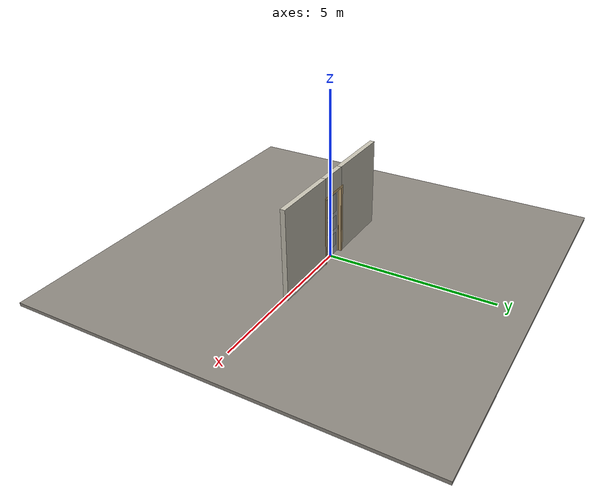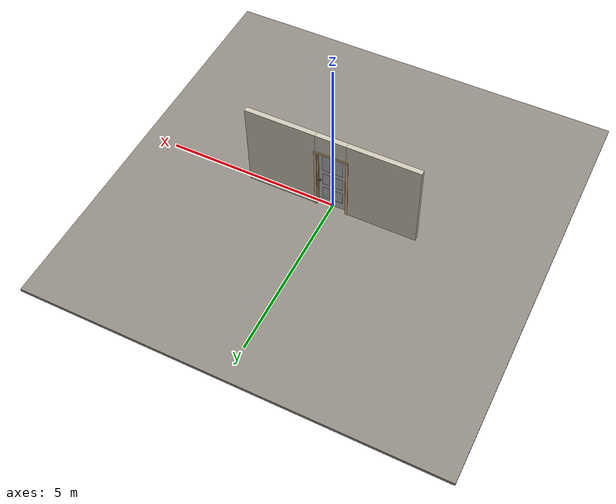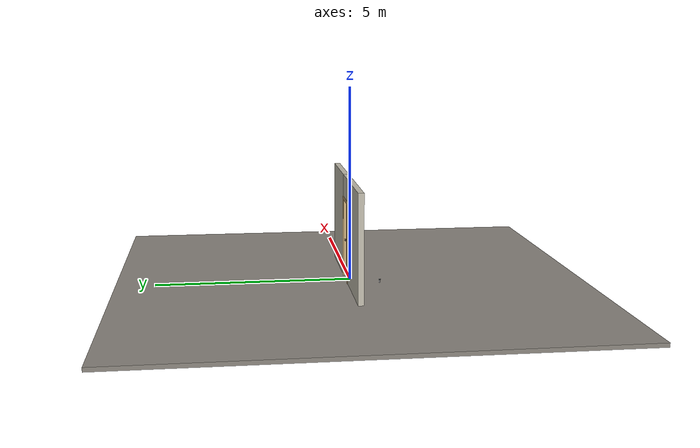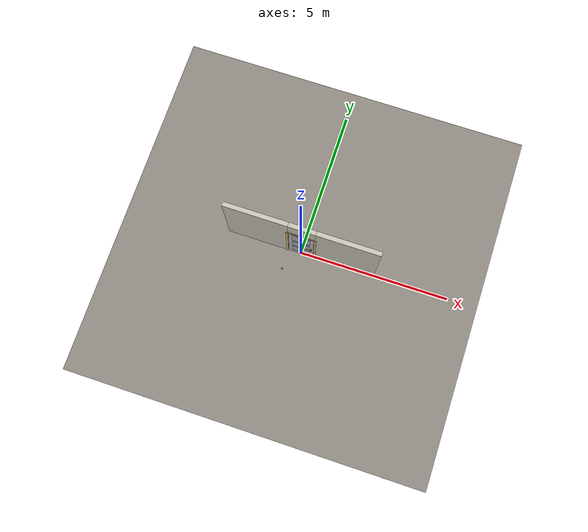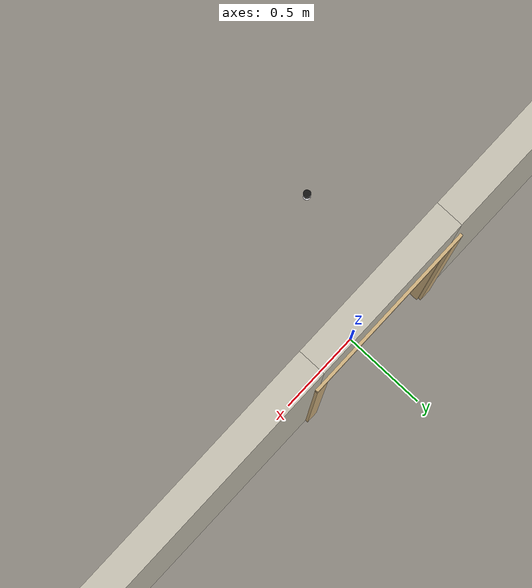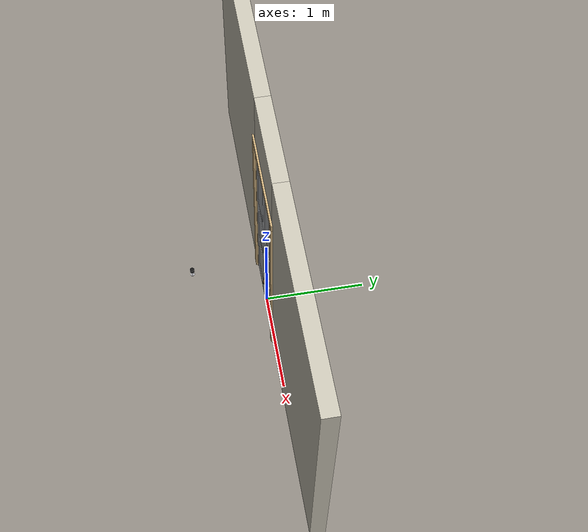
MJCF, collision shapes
<?xml version="1.0" ?>
<mujoco model="db0740_swing_single_full">
  <compiler angle="radian" meshdir="../../hardware" texturedir="../../textures" autolimits="true" inertiafromgeom="false"/>
  <option timestep="0.002" integrator="implicitfast" cone="elliptic" impratio="10" noslip_iterations="3">
    <flag multiccd="enable"/>
  </option>
  <size memory="16M"/>
  <default>
    <geom condim="4" solref="0.005 1" solimp="0.95 0.99 0.001"/>
    <joint solreflimit="0.005 1" solimplimit="0.95 0.99 0.001"/>
    <tendon solreflimit="0.005 1"/>
    <equality solref="0.002 1"/>
  </default>
  <visual>
    <headlight ambient="0.4 0.4 0.4" diffuse="0.7 0.7 0.7" specular="0.2 0.2 0.2"/>
    <quality shadowsize="4096"/>
    <map znear="0.01" zfar="60"/>
  </visual>
  <asset>
    <mesh name="hinge_96510cf394" file="hinge_96510cf394.obj"/>
    <mesh name="hinge_jamb_7fd4ca52b2" file="hinge_jamb_7fd4ca52b2.obj"/>
    <mesh name="knob_0ebdbe0e4b" file="knob_0ebdbe0e4b.obj"/>
    <material name="mat_floor" rgba="0.55 0.53 0.5 1" specular="0.2" shininess="0.15" reflectance="0"/>
    <material name="mat_wall" rgba="0.78 0.76 0.7 1" specular="0.2" shininess="0.1" reflectance="0"/>
    <material name="mat_leaf" rgba="0.72 0.73 0.74 1" specular="0.2" shininess="0.5" reflectance="0"/>
    <material name="mat_leaf_panel" rgba="0.662 0.672 0.681 1" specular="0.2" shininess="0.5" reflectance="0"/>
    <material name="mat_hinge" rgba="0.65 0.66 0.68 1" specular="0.74" shininess="0.5" reflectance="0.36"/>
    <material name="mat_op_bronze" rgba="0.3 0.22 0.15 1" specular="0.74" shininess="0.5" reflectance="0.36"/>
    <material name="mat_trim" rgba="0.85 0.66 0.3 1" specular="0.8" shininess="0.75" reflectance="0.4"/>
    <material name="mat_bolt" rgba="0.85 0.66 0.3 1" specular="0.8" shininess="0.75" reflectance="0.4"/>
    <material name="mat_frame" rgba="0.82 0.7 0.5 1" specular="0.2" shininess="0.45" reflectance="0"/>
    <material name="mat_bumper_stop" rgba="0.08 0.08 0.08 1" specular="0.2" shininess="0.1" reflectance="0"/>
    <material name="mat_stop_base" rgba="0.9 0.9 0.92 1" specular="0.8" shininess="0.9" reflectance="0.4"/>
    <texture name="skybox" type="skybox" builtin="gradient" rgb1="0.6 0.7 0.85" rgb2="0.9 0.92 0.95" width="256" height="256"/>
  </asset>
  <worldbody>
    <light name="sun" pos="1.5 -2.5 4" dir="-0.3 0.5 -0.8" directional="true" diffuse="0.8 0.8 0.8" specular="0.3 0.3 0.3" castshadow="true"/>
    <light name="fill" pos="-1.5 2.5 3" dir="0.3 -0.5 -0.7" directional="true" diffuse="0.35 0.35 0.4" castshadow="false"/>
    <camera name="robot_view" pos="0 -2.494187 1.734312" xyaxes="1 0 0 0 0.26963 0.962964" fovy="52"/>
    <camera name="far_view" pos="0 2.590187 1.734312" xyaxes="-1 0 0 0 -0.26963 0.962964" fovy="52"/>
    <camera name="iso" pos="1.932062 -2.087438 2.141063" xyaxes="0.741536 0.670913 0 -0.242917 0.268487 0.932151" fovy="46"/>
    <camera name="detail_handle" pos="0.526 -0.8695 1.245" xyaxes="0.97561 0.219512 0 -0.070934 0.315262 0.94635" fovy="38"/>
    <geom name="floor" type="box" size="6 6 0.05" pos="0 0 -0.05" material="mat_floor" group="0" contype="1" conaffinity="1" friction="0.8 0.005 0.0001" density="2400"/>
    <geom name="wall_left" type="box" size="1.0355 0.0725 1.35" pos="-1.4645 0.048 1.35" material="mat_wall" group="0" contype="1" conaffinity="1" friction="0.6 0.005 0.0001" density="800"/>
    <geom name="wall_right" type="box" size="1.0205 0.0725 1.35" pos="1.4795 0.048 1.35" material="mat_wall" group="0" contype="1" conaffinity="1" friction="0.6 0.005 0.0001" density="800"/>
    <geom name="wall_header" type="box" size="0.444 0.0725 0.303" pos="0.015 0.048 2.397" material="mat_wall" group="0" contype="1" conaffinity="1" friction="0.6 0.005 0.0001" density="800"/>
    <geom name="hinge_0_jamb" type="mesh" mesh="hinge_jamb_7fd4ca52b2" pos="-0.407 -0.0245 0.259" material="mat_hinge" group="1" contype="0" conaffinity="0" density="7850"/>
    <geom name="hinge_1_jamb" type="mesh" mesh="hinge_jamb_7fd4ca52b2" pos="-0.407 -0.0245 1.861" material="mat_hinge" group="1" contype="0" conaffinity="0" density="7850"/>
    <geom name="jamb_hinge" type="box" size="0.0095 0.0725 1.0225" pos="-0.4195 0.048 1.0225" material="mat_frame" group="0" contype="1" conaffinity="1" friction="0.6 0.005 0.0001" density="400"/>
    <geom name="strike_965_wall_n" type="box" size="0.0245 0.056325 0.0167" pos="0.4345 0.064175 0.965" material="mat_frame" group="0" contype="1" conaffinity="1" friction="0.6 0.005 0.0001" density="400"/>
    <geom name="strike_965_wall_p" type="box" size="0.0245 0.008 0.0167" pos="0.4345 -0.01585 0.965" material="mat_frame" group="0" contype="1" conaffinity="1" friction="0.6 0.005 0.0001" density="400"/>
    <geom name="strike_965_ramp" type="box" size="0.0245 0.01649 0.0167" pos="0.439136 -0.028673 0.965" quat="0.977148 0 0 0.212558" material="mat_frame" group="0" contype="1" conaffinity="1" friction="0.12 0.005 0.0001" density="400"/>
    <geom name="strike_965_back" type="box" size="0.01615 0.00785 0.0167" pos="0.44285 0 0.965" material="mat_frame" group="0" contype="1" conaffinity="1" friction="0.6 0.005 0.0001" density="400"/>
    <geom name="jamb_strike_0" type="box" size="0.0245 0.0725 0.47415" pos="0.4345 0.048 0.47415" material="mat_frame" group="0" contype="1" conaffinity="1" friction="0.6 0.005 0.0001" density="400"/>
    <geom name="jamb_strike_1" type="box" size="0.0245 0.0725 0.53165" pos="0.4345 0.048 1.51335" material="mat_frame" group="0" contype="1" conaffinity="1" friction="0.6 0.005 0.0001" density="400"/>
    <geom name="jamb_head" type="box" size="0.444 0.0725 0.0095" pos="0.015 0.048 2.0545" material="mat_frame" group="0" contype="1" conaffinity="1" friction="0.6 0.005 0.0001" density="400"/>
    <geom name="head_stud" type="box" size="0.444 0.0725 0.015" pos="0.015 0.048 2.079" material="mat_wall" group="0" contype="1" conaffinity="1" friction="0.6 0.005 0.0001" density="500"/>
    <geom name="stop_hinge" type="box" size="0.0055 0.016 1.0225" pos="-0.4045 0.034 1.0225" material="mat_frame" group="0" contype="1" conaffinity="1" friction="0.6 0.005 0.0001" density="400"/>
    <geom name="stop_strike" type="box" size="0.0055 0.016 1.0225" pos="0.4045 0.034 1.0225" material="mat_frame" group="0" contype="1" conaffinity="1" friction="0.6 0.005 0.0001" density="400"/>
    <geom name="stop_head" type="box" size="0.41 0.016 0.0055" pos="0 0.034 2.0395" material="mat_frame" group="0" contype="1" conaffinity="1" friction="0.6 0.005 0.0001" density="400"/>
    <geom name="casing_l_n" type="box" size="0.035 0.008 1.032" pos="-0.459 -0.0325 1.0225" material="mat_frame" group="2" contype="0" conaffinity="0" density="400"/>
    <geom name="casing_r_n" type="box" size="0.035 0.008 1.032" pos="0.459 -0.0325 1.0225" material="mat_frame" group="2" contype="0" conaffinity="0" density="400"/>
    <geom name="casing_h_n" type="box" size="0.494 0.008 0.035" pos="0 -0.0325 2.094" material="mat_frame" group="2" contype="0" conaffinity="0" density="400"/>
    <geom name="casing_l_p" type="box" size="0.035 0.008 1.032" pos="-0.459 0.1285 1.0225" material="mat_frame" group="2" contype="0" conaffinity="0" density="400"/>
    <geom name="casing_r_p" type="box" size="0.035 0.008 1.032" pos="0.459 0.1285 1.0225" material="mat_frame" group="2" contype="0" conaffinity="0" density="400"/>
    <geom name="casing_h_p" type="box" size="0.494 0.008 0.035" pos="0 0.1285 2.094" material="mat_frame" group="2" contype="0" conaffinity="0" density="400"/>
    <geom name="door_stop_base" type="cylinder" size="0.022 0.003" pos="-0.423 -0.71555 0.003" material="mat_stop_base" group="0" contype="1" conaffinity="1" friction="0.6 0.005 0.0001" density="7850"/>
    <geom name="door_stop_post" type="cylinder" size="0.012 0.0245" pos="-0.423 -0.71555 0.0305" material="mat_stop_base" group="0" contype="1" conaffinity="1" friction="0.6 0.005 0.0001" density="7850"/>
    <geom name="door_stop_bumper" type="cylinder" size="0.022 0.02" pos="-0.423 -0.71555 0.075" material="mat_bumper_stop" group="0" contype="1" conaffinity="1" friction="0.6 0.005 0.0001" density="1100"/>
    <site name="approach_point" pos="0 -1.5 0" quat="1 0 0 0" size="0.05" rgba="0.2 0.9 0.2 0.5" group="4"/>
    <site name="goal_point" pos="0 1.5 0" quat="1 0 0 0" size="0.05" rgba="0.2 0.9 0.2 0.5" group="4"/>
    <site name="door_plane_center" pos="0 0 1.0225" quat="1 0 0 0" size="0.02" rgba="0.2 0.9 0.2 0.5" group="4"/>
    <body name="leaf" pos="-0.41 0 0">
      <inertial pos="0.400813 -0.000329 1.025767" mass="11.897654" quat="0.500851 0.499728 0.500286 -0.499132" diaginertia="0.686571513 4.169927806 4.853928178"/>
      <joint name="leaf_hinge" type="hinge" axis="0 0 -1" pos="0.003 -0.0245 0" limited="true" range="0 1.570796" damping="0.210326" frictionloss="0.162029" armature="0.02"/>
      <geom name="leaf_slab" type="box" size="0.4065 0.0175 1.016" pos="0.4095 0 1.025" material="mat_leaf" group="0" contype="1" conaffinity="1" friction="0.35 0.005 0.0001" density="1"/>
      <geom name="leaf_panel_0_n" type="box" size="0.11575 0.003 0.209032" pos="0.22875 -0.0205 0.461552" material="mat_leaf_panel" group="1" contype="0" conaffinity="0" density="1"/>
      <geom name="leaf_panel_0_p" type="box" size="0.11575 0.003 0.209032" pos="0.22875 0.0205 0.461552" material="mat_leaf_panel" group="1" contype="0" conaffinity="0" density="1"/>
      <geom name="leaf_panel_1_n" type="box" size="0.11575 0.003 0.209032" pos="0.59025 -0.0205 0.461552" material="mat_leaf_panel" group="1" contype="0" conaffinity="0" density="1"/>
      <geom name="leaf_panel_1_p" type="box" size="0.11575 0.003 0.209032" pos="0.59025 0.0205 0.461552" material="mat_leaf_panel" group="1" contype="0" conaffinity="0" density="1"/>
      <geom name="leaf_panel_2_n" type="box" size="0.11575 0.003 0.209032" pos="0.22875 -0.0205 1.009616" material="mat_leaf_panel" group="1" contype="0" conaffinity="0" density="1"/>
      <geom name="leaf_panel_2_p" type="box" size="0.11575 0.003 0.209032" pos="0.22875 0.0205 1.009616" material="mat_leaf_panel" group="1" contype="0" conaffinity="0" density="1"/>
      <geom name="leaf_panel_3_n" type="box" size="0.11575 0.003 0.209032" pos="0.59025 -0.0205 1.009616" material="mat_leaf_panel" group="1" contype="0" conaffinity="0" density="1"/>
      <geom name="leaf_panel_3_p" type="box" size="0.11575 0.003 0.209032" pos="0.59025 0.0205 1.009616" material="mat_leaf_panel" group="1" contype="0" conaffinity="0" density="1"/>
      <geom name="leaf_panel_4_n" type="box" size="0.11575 0.003 0.285376" pos="0.22875 -0.0205 1.634024" material="mat_leaf_panel" group="1" contype="0" conaffinity="0" density="1"/>
      <geom name="leaf_panel_4_p" type="box" size="0.11575 0.003 0.285376" pos="0.22875 0.0205 1.634024" material="mat_leaf_panel" group="1" contype="0" conaffinity="0" density="1"/>
      <geom name="leaf_panel_5_n" type="box" size="0.11575 0.003 0.285376" pos="0.59025 -0.0205 1.634024" material="mat_leaf_panel" group="1" contype="0" conaffinity="0" density="1"/>
      <geom name="leaf_panel_5_p" type="box" size="0.11575 0.003 0.285376" pos="0.59025 0.0205 1.634024" material="mat_leaf_panel" group="1" contype="0" conaffinity="0" density="1"/>
      <geom name="hinge_0" type="mesh" mesh="hinge_96510cf394" pos="0.003 -0.0245 0.259" material="mat_hinge" group="1" contype="0" conaffinity="0" density="7850"/>
      <geom name="hinge_1" type="mesh" mesh="hinge_96510cf394" pos="0.003 -0.0245 1.861" material="mat_hinge" group="1" contype="0" conaffinity="0" density="7850"/>
      <geom name="leaf_latch_bolt_faceplate" type="box" size="0.0006 0.01235 0.0267" pos="0.8154 0 0.965" material="mat_bolt" group="1" contype="0" conaffinity="0" density="8500"/>
      <site name="leaf_edge_mid" pos="0.816 0 1.016" quat="1 0 0 0" size="0.02" rgba="0.2 0.9 0.2 0.5" group="4"/>
      <body name="leaf_handle" pos="0.756 0 0.965">
        <inertial pos="0 0 0" mass="1.21367" quat="0.5 0.5 0.5 0.5" diaginertia="0.000321148 0.004835982 0.004835982"/>
        <joint name="leaf_handle_hinge" type="hinge" axis="0 -1 0" limited="true" range="0 0.87" damping="0.143674" frictionloss="0.039" stiffness="0.5" springref="-0.5" armature="0.01"/>
        <geom name="leaf_handle_spindle" type="cylinder" size="0.006 0.0255" pos="0 0 0" quat="0.707107 -0.707107 0 0" material="mat_op_bronze" group="1" contype="0" conaffinity="0" density="7850"/>
        <geom name="leaf_handle_knob_n" type="mesh" mesh="knob_0ebdbe0e4b" pos="0 -0.0175 0" quat="0.707107 0.707107 0 0" material="mat_op_bronze" group="1" contype="0" conaffinity="0" density="3000"/>
        <geom name="leaf_handle_knob_col_n" type="sphere" size="0.0252" pos="0 -0.0695 0" material="mat_op_bronze" group="0" contype="1" conaffinity="1" friction="0.9 0.01 0.0001" density="3000"/>
        <geom name="leaf_handle_knob_neck_n" type="cylinder" size="0.011 0.012" pos="0 -0.0295 0" quat="0.707107 -0.707107 0 0" material="mat_op_bronze" group="3" contype="1" conaffinity="1" rgba="0.8 0.3 0.3 0.25" friction="0.6 0.005 0.0001" density="3000"/>
        <geom name="leaf_handle_knob_p" type="mesh" mesh="knob_0ebdbe0e4b" pos="0 0.0175 0" quat="-0.707107 0.707107 0 0" material="mat_op_bronze" group="1" contype="0" conaffinity="0" density="3000"/>
        <geom name="leaf_handle_knob_col_p" type="sphere" size="0.0252" pos="0 0.0695 0" material="mat_op_bronze" group="0" contype="1" conaffinity="1" friction="0.9 0.01 0.0001" density="3000"/>
        <geom name="leaf_handle_knob_neck_p" type="cylinder" size="0.011 0.012" pos="0 0.0295 0" quat="0.707107 -0.707107 0 0" material="mat_op_bronze" group="3" contype="1" conaffinity="1" rgba="0.8 0.3 0.3 0.25" friction="0.6 0.005 0.0001" density="3000"/>
        <site name="leaf_handle_grip_n" pos="0 -0.0695 0" quat="1 0 0 0" size="0.012" rgba="0.2 0.9 0.2 0.5" group="4"/>
        <site name="leaf_handle_grip_p" pos="0 0.0695 0" quat="1 0 0 0" size="0.012" rgba="0.2 0.9 0.2 0.5" group="4"/>
      </body>
      <body name="leaf_latch_bolt" pos="0.816 0 0.965">
        <inertial pos="-0.00865 0 0" mass="0.041419" quat="0.92388 -0.382683 0 0" diaginertia="0.000000798 0.000005598 0.000005598"/>
        <joint name="leaf_latch_bolt_slide" type="slide" axis="-1 0 0" limited="true" range="0 0.0127" damping="2" frictionloss="0.3" stiffness="300" springref="-0.008333" armature="0.1"/>
        <geom name="leaf_latch_bolt_capsule" type="capsule" size="0.00635 0.015" pos="-0.00865 0 0" quat="0.707107 0 0.707107 0" material="mat_bolt" group="0" contype="1" conaffinity="1" friction="0.2 0.005 0.0001" density="8500"/>
      </body>
    </body>
  </worldbody>
  <tendon>
    <fixed name="leaf_latch_bolt_coupling" limited="true" range="0 10">
      <joint joint="leaf_latch_bolt_slide" coef="1"/>
      <joint joint="leaf_handle_hinge" coef="-0.015679"/>
    </fixed>
  </tendon>
  <sensor>
    <jointpos name="leaf_hinge_pos" joint="leaf_hinge"/>
    <jointvel name="leaf_hinge_vel" joint="leaf_hinge"/>
    <jointpos name="leaf_handle_hinge_pos" joint="leaf_handle_hinge"/>
    <jointvel name="leaf_handle_hinge_vel" joint="leaf_handle_hinge"/>
    <jointpos name="leaf_latch_bolt_slide_pos" joint="leaf_latch_bolt_slide"/>
    <jointvel name="leaf_latch_bolt_slide_vel" joint="leaf_latch_bolt_slide"/>
  </sensor>
</mujoco>
